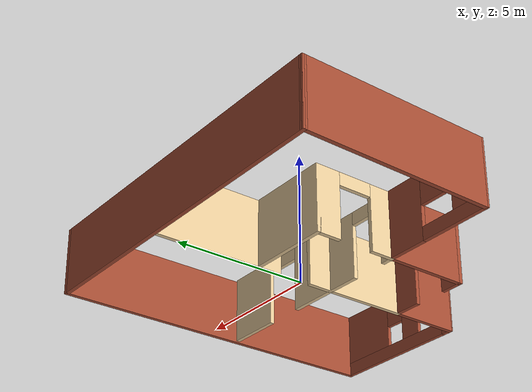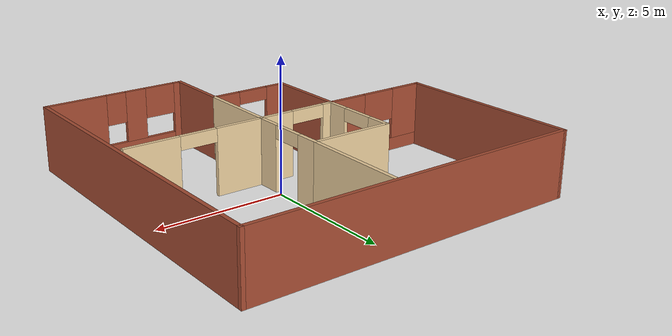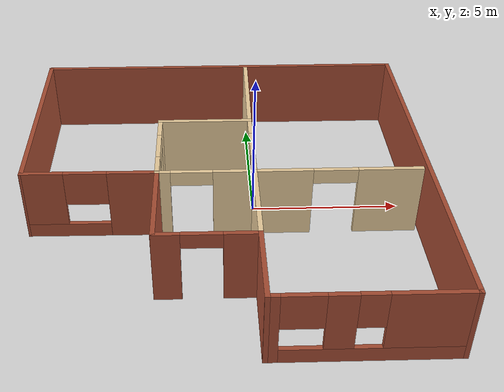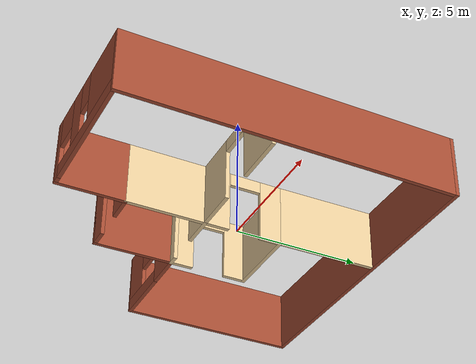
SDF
<?xml version='1.0'?>
<sdf version='1.6'>
  <model name='model'>
    <pose frame=''>-1.00051 -0.524576 0 0 -0 0</pose>
    <link name='Wall_0'>
      <pose frame=''>3.75051 -6.42542 0 0 -0 0</pose>
      <visual name='Wall_0_Visual_0'>
        <pose frame=''>-2.6675 0 1.25 0 -0 0</pose>
        <geometry>
          <box>
            <size>0.415 0.15 2.5</size>
          </box>
        </geometry>
        <material>
          <script>
            <uri>file://media/materials/scripts/gazebo.material</uri>
            <name>Gazebo/Bricks</name>
          </script>
          <ambient>1 1 1 1</ambient>
        </material>
        <meta>
          <layer>0</layer>
        </meta>
      </visual>
      <collision name='Wall_0_Collision_0'>
        <geometry>
          <box>
            <size>0.415 0.15 2.5</size>
          </box>
        </geometry>
        <pose frame=''>-2.6675 0 1.25 0 -0 0</pose>
      </collision>
      <visual name='Wall_0_Visual_1'>
        <pose frame=''>0.2075 0 0.25 0 -0 0</pose>
        <geometry>
          <box>
            <size>5.335 0.15 0.5</size>
          </box>
        </geometry>
        <material>
          <script>
            <uri>file://media/materials/scripts/gazebo.material</uri>
            <name>Gazebo/Bricks</name>
          </script>
          <ambient>1 1 1 1</ambient>
        </material>
        <meta>
          <layer>0</layer>
        </meta>
      </visual>
      <collision name='Wall_0_Collision_1'>
        <geometry>
          <box>
            <size>5.335 0.15 0.5</size>
          </box>
        </geometry>
        <pose frame=''>0.2075 0 0.25 0 -0 0</pose>
      </collision>
      <visual name='Wall_0_Visual_2'>
        <pose frame=''>-0.795 0 1.5 0 -0 0</pose>
        <geometry>
          <box>
            <size>0.85 0.15 2</size>
          </box>
        </geometry>
        <material>
          <script>
            <uri>file://media/materials/scripts/gazebo.material</uri>
            <name>Gazebo/Bricks</name>
          </script>
          <ambient>1 1 1 1</ambient>
        </material>
        <meta>
          <layer>0</layer>
        </meta>
      </visual>
      <collision name='Wall_0_Collision_2'>
        <geometry>
          <box>
            <size>0.85 0.15 2</size>
          </box>
        </geometry>
        <pose frame=''>-0.795 0 1.5 0 -0 0</pose>
      </collision>
      <visual name='Wall_0_Visual_3'>
        <pose frame=''>1.6525 0 1.5 0 -0 0</pose>
        <geometry>
          <box>
            <size>2.445 0.15 2</size>
          </box>
        </geometry>
        <material>
          <script>
            <uri>file://media/materials/scripts/gazebo.material</uri>
            <name>Gazebo/Bricks</name>
          </script>
          <ambient>1 1 1 1</ambient>
        </material>
        <meta>
          <layer>0</layer>
        </meta>
      </visual>
      <collision name='Wall_0_Collision_3'>
        <geometry>
          <box>
            <size>2.445 0.15 2</size>
          </box>
        </geometry>
        <pose frame=''>1.6525 0 1.5 0 -0 0</pose>
      </collision>
      <visual name='Wall_0_Visual_4'>
        <pose frame=''>-1.84 0 1.9 0 -0 0</pose>
        <geometry>
          <box>
            <size>1.24 0.15 1.2</size>
          </box>
        </geometry>
        <material>
          <script>
            <uri>file://media/materials/scripts/gazebo.material</uri>
            <name>Gazebo/Bricks</name>
          </script>
          <ambient>1 1 1 1</ambient>
        </material>
        <meta>
          <layer>0</layer>
        </meta>
      </visual>
      <collision name='Wall_0_Collision_4'>
        <geometry>
          <box>
            <size>1.24 0.15 1.2</size>
          </box>
        </geometry>
        <pose frame=''>-1.84 0 1.9 0 -0 0</pose>
      </collision>
      <visual name='Wall_0_Visual_5'>
        <pose frame=''>0.03 0 1.9 0 -0 0</pose>
        <geometry>
          <box>
            <size>0.8 0.15 1.2</size>
          </box>
        </geometry>
        <material>
          <script>
            <uri>file://media/materials/scripts/gazebo.material</uri>
            <name>Gazebo/Bricks</name>
          </script>
          <ambient>1 1 1 1</ambient>
        </material>
        <meta>
          <layer>0</layer>
        </meta>
      </visual>
      <collision name='Wall_0_Collision_5'>
        <geometry>
          <box>
            <size>0.8 0.15 1.2</size>
          </box>
        </geometry>
        <pose frame=''>0.03 0 1.9 0 -0 0</pose>
      </collision>
    </link>
    <link name='Wall_11'>
      <collision name='Wall_11_Collision'>
        <geometry>
          <box>
            <size>3.25 0.15 2.5</size>
          </box>
        </geometry>
        <pose frame=''>0 0 1.25 0 -0 0</pose>
      </collision>
      <visual name='Wall_11_Visual'>
        <pose frame=''>0 0 1.25 0 -0 0</pose>
        <geometry>
          <box>
            <size>3.25 0.15 2.5</size>
          </box>
        </geometry>
        <material>
          <script>
            <uri>file://media/materials/scripts/gazebo.material</uri>
            <name>Gazebo/Grey</name>
          </script>
          <ambient>0.921569 0.807843 0.615686 1</ambient>
        </material>
        <meta>
          <layer>0</layer>
        </meta>
      </visual>
      <pose frame=''>0.949862 -2.28897 0 0 -0 1.5708</pose>
    </link>
    <link name='Wall_12'>
      <pose frame=''>-0.60675 -0.738974 0 0 -0 3.14159</pose>
      <visual name='Wall_12_Visual_0'>
        <pose frame=''>-0.926503 0 1.25 0 -0 0</pose>
        <geometry>
          <box>
            <size>1.41022 0.15 2.5</size>
          </box>
        </geometry>
        <material>
          <script>
            <uri>file://media/materials/scripts/gazebo.material</uri>
            <name>Gazebo/Grey</name>
          </script>
          <ambient>0.921569 0.807843 0.615686 1</ambient>
        </material>
        <meta>
          <layer>0</layer>
        </meta>
      </visual>
      <collision name='Wall_12_Collision_0'>
        <geometry>
          <box>
            <size>1.41022 0.15 2.5</size>
          </box>
        </geometry>
        <pose frame=''>-0.926503 0 1.25 0 -0 0</pose>
      </collision>
      <visual name='Wall_12_Visual_1'>
        <pose frame=''>1.38269 0 1.25 0 -0 0</pose>
        <geometry>
          <box>
            <size>0.497845 0.15 2.5</size>
          </box>
        </geometry>
        <material>
          <script>
            <uri>file://media/materials/scripts/gazebo.material</uri>
            <name>Gazebo/Grey</name>
          </script>
          <ambient>0.921569 0.807843 0.615686 1</ambient>
        </material>
        <meta>
          <layer>0</layer>
        </meta>
      </visual>
      <collision name='Wall_12_Collision_1'>
        <geometry>
          <box>
            <size>0.497845 0.15 2.5</size>
          </box>
        </geometry>
        <pose frame=''>1.38269 0 1.25 0 -0 0</pose>
      </collision>
      <visual name='Wall_12_Visual_2'>
        <pose frame=''>0.456188 0 2.25 0 -0 0</pose>
        <geometry>
          <box>
            <size>1.35516 0.15 0.5</size>
          </box>
        </geometry>
        <material>
          <script>
            <uri>file://media/materials/scripts/gazebo.material</uri>
            <name>Gazebo/Grey</name>
          </script>
          <ambient>0.921569 0.807843 0.615686 1</ambient>
        </material>
        <meta>
          <layer>0</layer>
        </meta>
      </visual>
      <collision name='Wall_12_Collision_2'>
        <geometry>
          <box>
            <size>1.35516 0.15 0.5</size>
          </box>
        </geometry>
        <pose frame=''>0.456188 0 2.25 0 -0 0</pose>
      </collision>
    </link>
    <link name='Wall_14'>
      <pose frame=''>-2.16336 0.811026 0 0 -0 1.5708</pose>
      <visual name='Wall_14_Visual_0'>
        <pose frame=''>-1.14581 0 1.25 0 -0 0</pose>
        <geometry>
          <box>
            <size>0.958382 0.15 2.5</size>
          </box>
        </geometry>
        <material>
          <script>
            <uri>file://media/materials/scripts/gazebo.material</uri>
            <name>Gazebo/Grey</name>
          </script>
          <ambient>0.921569 0.807843 0.615686 1</ambient>
        </material>
        <meta>
          <layer>0</layer>
        </meta>
      </visual>
      <collision name='Wall_14_Collision_0'>
        <geometry>
          <box>
            <size>0.958382 0.15 2.5</size>
          </box>
        </geometry>
        <pose frame=''>-1.14581 0 1.25 0 -0 0</pose>
      </collision>
      <visual name='Wall_14_Visual_1'>
        <pose frame=''>1.13737 0 1.25 0 -0 0</pose>
        <geometry>
          <box>
            <size>0.975251 0.15 2.5</size>
          </box>
        </geometry>
        <material>
          <script>
            <uri>file://media/materials/scripts/gazebo.material</uri>
            <name>Gazebo/Grey</name>
          </script>
          <ambient>0.921569 0.807843 0.615686 1</ambient>
        </material>
        <meta>
          <layer>0</layer>
        </meta>
      </visual>
      <collision name='Wall_14_Collision_1'>
        <geometry>
          <box>
            <size>0.975251 0.15 2.5</size>
          </box>
        </geometry>
        <pose frame=''>1.13737 0 1.25 0 -0 0</pose>
      </collision>
      <visual name='Wall_14_Visual_2'>
        <pose frame=''>-0.008435 0 2.25 0 -0 0</pose>
        <geometry>
          <box>
            <size>1.31637 0.15 0.5</size>
          </box>
        </geometry>
        <material>
          <script>
            <uri>file://media/materials/scripts/gazebo.material</uri>
            <name>Gazebo/Grey</name>
          </script>
          <ambient>0.921569 0.807843 0.615686 1</ambient>
        </material>
        <meta>
          <layer>0</layer>
        </meta>
      </visual>
      <collision name='Wall_14_Collision_2'>
        <geometry>
          <box>
            <size>1.31637 0.15 0.5</size>
          </box>
        </geometry>
        <pose frame=''>-0.008435 0 2.25 0 -0 0</pose>
      </collision>
    </link>
    <link name='Wall_15'>
      <collision name='Wall_15_Collision'>
        <geometry>
          <box>
            <size>3.25 0.15 2.5</size>
          </box>
        </geometry>
        <pose frame=''>0 0 1.25 0 -0 0</pose>
      </collision>
      <visual name='Wall_15_Visual'>
        <pose frame=''>0 0 1.25 0 -0 0</pose>
        <geometry>
          <box>
            <size>3.25 0.15 2.5</size>
          </box>
        </geometry>
        <material>
          <script>
            <uri>file://media/materials/scripts/gazebo.material</uri>
            <name>Gazebo/Grey</name>
          </script>
          <ambient>0.921569 0.807843 0.615686 1</ambient>
        </material>
        <meta>
          <layer>0</layer>
        </meta>
      </visual>
      <pose frame=''>-0.613363 2.36103 0 0 -0 0</pose>
    </link>
    <link name='Wall_16'>
      <pose frame=''>0.94325 0.811026 0 0 0 -1.56653</pose>
      <visual name='Wall_16_Visual_0'>
        <pose frame=''>-1.14914 0 1.25 0 -0 0</pose>
        <geometry>
          <box>
            <size>0.951747 0.15 2.5</size>
          </box>
        </geometry>
        <material>
          <script>
            <uri>file://media/materials/scripts/gazebo.material</uri>
            <name>Gazebo/Grey</name>
          </script>
          <ambient>0.921569 0.807843 0.615686 1</ambient>
        </material>
        <meta>
          <layer>0</layer>
        </meta>
      </visual>
      <collision name='Wall_16_Collision_0'>
        <geometry>
          <box>
            <size>0.951747 0.15 2.5</size>
          </box>
        </geometry>
        <pose frame=''>-1.14914 0 1.25 0 -0 0</pose>
      </collision>
      <visual name='Wall_16_Visual_1'>
        <pose frame=''>1.10426 0 1.25 0 -0 0</pose>
        <geometry>
          <box>
            <size>1.0415 0.15 2.5</size>
          </box>
        </geometry>
        <material>
          <script>
            <uri>file://media/materials/scripts/gazebo.material</uri>
            <name>Gazebo/Grey</name>
          </script>
          <ambient>0.921569 0.807843 0.615686 1</ambient>
        </material>
        <meta>
          <layer>0</layer>
        </meta>
      </visual>
      <collision name='Wall_16_Collision_1'>
        <geometry>
          <box>
            <size>1.0415 0.15 2.5</size>
          </box>
        </geometry>
        <pose frame=''>1.10426 0 1.25 0 -0 0</pose>
      </collision>
      <visual name='Wall_16_Visual_2'>
        <pose frame=''>-0.044877 0 2.25 0 -0 0</pose>
        <geometry>
          <box>
            <size>1.25678 0.15 0.5</size>
          </box>
        </geometry>
        <material>
          <script>
            <uri>file://media/materials/scripts/gazebo.material</uri>
            <name>Gazebo/Grey</name>
          </script>
          <ambient>0.921569 0.807843 0.615686 1</ambient>
        </material>
        <meta>
          <layer>0</layer>
        </meta>
      </visual>
      <collision name='Wall_16_Collision_2'>
        <geometry>
          <box>
            <size>1.25678 0.15 0.5</size>
          </box>
        </geometry>
        <pose frame=''>-0.044877 0 2.25 0 -0 0</pose>
      </collision>
    </link>
    <link name='Wall_18'>
      <collision name='Wall_18_Collision'>
        <geometry>
          <box>
            <size>13 0.15 2.5</size>
          </box>
        </geometry>
        <pose frame=''>0 0 1.25 0 -0 0</pose>
      </collision>
      <visual name='Wall_18_Visual'>
        <pose frame=''>0 0 1.25 0 -0 0</pose>
        <geometry>
          <box>
            <size>13 0.15 2.5</size>
          </box>
        </geometry>
        <material>
          <script>
            <uri>file://media/materials/scripts/gazebo.material</uri>
            <name>Gazebo/Bricks</name>
          </script>
          <ambient>1 1 1 1</ambient>
        </material>
        <meta>
          <layer>0</layer>
        </meta>
      </visual>
      <pose frame=''>6.55051 -0.000424 0 0 -0 1.5708</pose>
    </link>
    <link name='Wall_19'>
      <collision name='Wall_19_Collision'>
        <geometry>
          <box>
            <size>13.25 0.15 2.5</size>
          </box>
        </geometry>
        <pose frame=''>0 0 1.25 0 -0 0</pose>
      </collision>
      <visual name='Wall_19_Visual'>
        <pose frame=''>0 0 1.25 0 -0 0</pose>
        <geometry>
          <box>
            <size>13.25 0.15 2.5</size>
          </box>
        </geometry>
        <material>
          <script>
            <uri>file://media/materials/scripts/gazebo.material</uri>
            <name>Gazebo/Bricks</name>
          </script>
          <ambient>1 1 1 1</ambient>
        </material>
        <meta>
          <layer>0</layer>
        </meta>
      </visual>
      <pose frame=''>0.000512 6.42458 0 0 -0 3.14159</pose>
    </link>
    <link name='Wall_2'>
      <pose frame=''>-0.613363 -3.83897 0 0 -0 0</pose>
      <visual name='Wall_2_Visual_0'>
        <pose frame=''>-1.19332 0 1.25 0 -0 0</pose>
        <geometry>
          <box>
            <size>0.863357 0.15 2.5</size>
          </box>
        </geometry>
        <material>
          <script>
            <uri>file://media/materials/scripts/gazebo.material</uri>
            <name>Gazebo/Bricks</name>
          </script>
          <ambient>1 1 1 1</ambient>
        </material>
        <meta>
          <layer>0</layer>
        </meta>
      </visual>
      <collision name='Wall_2_Collision_0'>
        <geometry>
          <box>
            <size>0.863357 0.15 2.5</size>
          </box>
        </geometry>
        <pose frame=''>-1.19332 0 1.25 0 -0 0</pose>
      </collision>
      <visual name='Wall_2_Visual_1'>
        <pose frame=''>1.05526 0 1.25 0 -0 0</pose>
        <geometry>
          <box>
            <size>1.13949 0.15 2.5</size>
          </box>
        </geometry>
        <material>
          <script>
            <uri>file://media/materials/scripts/gazebo.material</uri>
            <name>Gazebo/Bricks</name>
          </script>
          <ambient>1 1 1 1</ambient>
        </material>
        <meta>
          <layer>0</layer>
        </meta>
      </visual>
      <collision name='Wall_2_Collision_1'>
        <geometry>
          <box>
            <size>1.13949 0.15 2.5</size>
          </box>
        </geometry>
        <pose frame=''>1.05526 0 1.25 0 -0 0</pose>
      </collision>
      <visual name='Wall_2_Visual_2'>
        <pose frame=''>-0.138065 0 2.25 0 -0 0</pose>
        <geometry>
          <box>
            <size>1.24716 0.15 0.5</size>
          </box>
        </geometry>
        <material>
          <script>
            <uri>file://media/materials/scripts/gazebo.material</uri>
            <name>Gazebo/Bricks</name>
          </script>
          <ambient>1 1 1 1</ambient>
        </material>
        <meta>
          <layer>0</layer>
        </meta>
      </visual>
      <collision name='Wall_2_Collision_2'>
        <geometry>
          <box>
            <size>1.24716 0.15 0.5</size>
          </box>
        </geometry>
        <pose frame=''>-0.138065 0 2.25 0 -0 0</pose>
      </collision>
    </link>
    <link name='Wall_24'>
      <collision name='Wall_24_Collision'>
        <geometry>
          <box>
            <size>7.28319 0.15 2.5</size>
          </box>
        </geometry>
        <pose frame=''>0 0 1.25 0 -0 0</pose>
      </collision>
      <visual name='Wall_24_Visual'>
        <pose frame=''>0 0 1.25 0 -0 0</pose>
        <geometry>
          <box>
            <size>7.28319 0.15 2.5</size>
          </box>
        </geometry>
        <material>
          <script>
            <uri>file://media/materials/scripts/gazebo.material</uri>
            <name>Gazebo/Bricks</name>
          </script>
          <ambient>1 1 1 1</ambient>
        </material>
        <meta>
          <layer>0</layer>
        </meta>
      </visual>
      <pose frame=''>-6.50039 2.85832 0 0 0 -1.55703</pose>
    </link>
    <link name='Wall_26'>
      <collision name='Wall_26_Collision'>
        <geometry>
          <box>
            <size>4.07865 0.15 2.5</size>
          </box>
        </geometry>
        <pose frame=''>0 0 1.25 0 -0 0</pose>
      </collision>
      <visual name='Wall_26_Visual'>
        <pose frame=''>0 0 1.25 0 -0 0</pose>
        <geometry>
          <box>
            <size>4.07865 0.15 2.5</size>
          </box>
        </geometry>
        <material>
          <script>
            <uri>file://media/materials/scripts/gazebo.material</uri>
            <name>Gazebo/Grey</name>
          </script>
          <ambient>0.921569 0.807843 0.615686 1</ambient>
        </material>
        <meta>
          <layer>0</layer>
        </meta>
      </visual>
      <pose frame=''>0.959408 4.32522 0 0 0 -1.58239</pose>
    </link>
    <link name='Wall_28'>
      <pose frame=''>3.62486 -0.738974 0 0 -0 0</pose>
      <visual name='Wall_28_Visual_0'>
        <pose frame=''>-1.77333 0 1.25 0 -0 0</pose>
        <geometry>
          <box>
            <size>1.95334 0.15 2.5</size>
          </box>
        </geometry>
        <material>
          <script>
            <uri>file://media/materials/scripts/gazebo.material</uri>
            <name>Gazebo/Grey</name>
          </script>
          <ambient>0.921569 0.807843 0.615686 1</ambient>
        </material>
        <meta>
          <layer>0</layer>
        </meta>
      </visual>
      <collision name='Wall_28_Collision_0'>
        <geometry>
          <box>
            <size>1.95334 0.15 2.5</size>
          </box>
        </geometry>
        <pose frame=''>-1.77333 0 1.25 0 -0 0</pose>
      </collision>
      <visual name='Wall_28_Visual_1'>
        <pose frame=''>1.69382 0 1.25 0 -0 0</pose>
        <geometry>
          <box>
            <size>2.11235 0.15 2.5</size>
          </box>
        </geometry>
        <material>
          <script>
            <uri>file://media/materials/scripts/gazebo.material</uri>
            <name>Gazebo/Grey</name>
          </script>
          <ambient>0.921569 0.807843 0.615686 1</ambient>
        </material>
        <meta>
          <layer>0</layer>
        </meta>
      </visual>
      <collision name='Wall_28_Collision_1'>
        <geometry>
          <box>
            <size>2.11235 0.15 2.5</size>
          </box>
        </geometry>
        <pose frame=''>1.69382 0 1.25 0 -0 0</pose>
      </collision>
      <visual name='Wall_28_Visual_2'>
        <pose frame=''>-0.079509 0 2.25 0 -0 0</pose>
        <geometry>
          <box>
            <size>1.43431 0.15 0.5</size>
          </box>
        </geometry>
        <material>
          <script>
            <uri>file://media/materials/scripts/gazebo.material</uri>
            <name>Gazebo/Grey</name>
          </script>
          <ambient>0.921569 0.807843 0.615686 1</ambient>
        </material>
        <meta>
          <layer>0</layer>
        </meta>
      </visual>
      <collision name='Wall_28_Collision_2'>
        <geometry>
          <box>
            <size>1.43431 0.15 0.5</size>
          </box>
        </geometry>
        <pose frame=''>-0.079509 0 2.25 0 -0 0</pose>
      </collision>
    </link>
    <link name='Wall_5'>
      <collision name='Wall_5_Collision'>
        <geometry>
          <box>
            <size>2.73676 0.15 2.5</size>
          </box>
        </geometry>
        <pose frame=''>0 0 1.25 0 -0 0</pose>
      </collision>
      <visual name='Wall_5_Visual'>
        <pose frame=''>0 0 1.25 0 -0 0</pose>
        <geometry>
          <box>
            <size>2.73676 0.15 2.5</size>
          </box>
        </geometry>
        <material>
          <script>
            <uri>file://media/materials/scripts/gazebo.material</uri>
            <name>Gazebo/Bricks</name>
          </script>
          <ambient>1 1 1 1</ambient>
        </material>
        <meta>
          <layer>0</layer>
        </meta>
      </visual>
      <pose frame=''>0.950187 -5.1322 0 0 0 -1.57055</pose>
    </link>
    <link name='Wall_7'>
      <collision name='Wall_7_Collision'>
        <geometry>
          <box>
            <size>3.25 0.15 2.5</size>
          </box>
        </geometry>
        <pose frame=''>0 0 1.25 0 -0 0</pose>
      </collision>
      <visual name='Wall_7_Visual'>
        <pose frame=''>0 0 1.25 0 -0 0</pose>
        <geometry>
          <box>
            <size>3.25 0.15 2.5</size>
          </box>
        </geometry>
        <material>
          <script>
            <uri>file://media/materials/scripts/gazebo.material</uri>
            <name>Gazebo/Bricks</name>
          </script>
          <ambient>1 1 1 1</ambient>
        </material>
        <meta>
          <layer>0</layer>
        </meta>
      </visual>
      <pose frame=''>-2.16336 -2.28897 0 0 -0 1.5708</pose>
    </link>
    <link name='Wall_8'>
      <pose frame=''>-4.30733 -0.723457 0 0 -0 3.13435</pose>
      <visual name='Wall_8_Visual_0'>
        <pose frame=''>-1.38722 0 1.25 0 -0 0</pose>
        <geometry>
          <box>
            <size>1.66361 0.15 2.5</size>
          </box>
        </geometry>
        <material>
          <script>
            <uri>file://media/materials/scripts/gazebo.material</uri>
            <name>Gazebo/Bricks</name>
          </script>
          <ambient>1 1 1 1</ambient>
        </material>
        <meta>
          <layer>0</layer>
        </meta>
      </visual>
      <collision name='Wall_8_Collision_0'>
        <geometry>
          <box>
            <size>1.66361 0.15 2.5</size>
          </box>
        </geometry>
        <pose frame=''>-1.38722 0 1.25 0 -0 0</pose>
      </collision>
      <visual name='Wall_8_Visual_1'>
        <pose frame=''>0.831805 0 0.25 0 -0 0</pose>
        <geometry>
          <box>
            <size>2.77444 0.15 0.5</size>
          </box>
        </geometry>
        <material>
          <script>
            <uri>file://media/materials/scripts/gazebo.material</uri>
            <name>Gazebo/Bricks</name>
          </script>
          <ambient>1 1 1 1</ambient>
        </material>
        <meta>
          <layer>0</layer>
        </meta>
      </visual>
      <collision name='Wall_8_Collision_1'>
        <geometry>
          <box>
            <size>2.77444 0.15 0.5</size>
          </box>
        </geometry>
        <pose frame=''>0.831805 0 0.25 0 -0 0</pose>
      </collision>
      <visual name='Wall_8_Visual_2'>
        <pose frame=''>1.52129 0 1.5 0 -0 0</pose>
        <geometry>
          <box>
            <size>1.39547 0.15 2</size>
          </box>
        </geometry>
        <material>
          <script>
            <uri>file://media/materials/scripts/gazebo.material</uri>
            <name>Gazebo/Bricks</name>
          </script>
          <ambient>1 1 1 1</ambient>
        </material>
        <meta>
          <layer>0</layer>
        </meta>
      </visual>
      <collision name='Wall_8_Collision_2'>
        <geometry>
          <box>
            <size>1.39547 0.15 2</size>
          </box>
        </geometry>
        <pose frame=''>1.52129 0 1.5 0 -0 0</pose>
      </collision>
      <visual name='Wall_8_Visual_3'>
        <pose frame=''>0.134069 0 1.9 0 -0 0</pose>
        <geometry>
          <box>
            <size>1.37896 0.15 1.2</size>
          </box>
        </geometry>
        <material>
          <script>
            <uri>file://media/materials/scripts/gazebo.material</uri>
            <name>Gazebo/Bricks</name>
          </script>
          <ambient>1 1 1 1</ambient>
        </material>
        <meta>
          <layer>0</layer>
        </meta>
      </visual>
      <collision name='Wall_8_Collision_3'>
        <geometry>
          <box>
            <size>1.37896 0.15 1.2</size>
          </box>
        </geometry>
        <pose frame=''>0.134069 0 1.9 0 -0 0</pose>
      </collision>
    </link>
    <static>1</static>
  </model>
</sdf>
